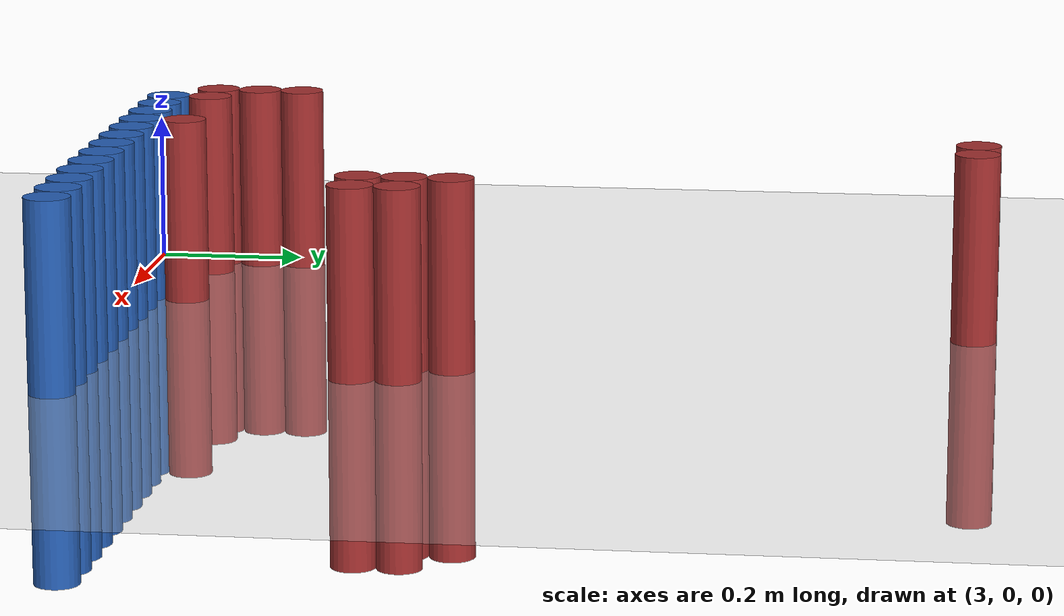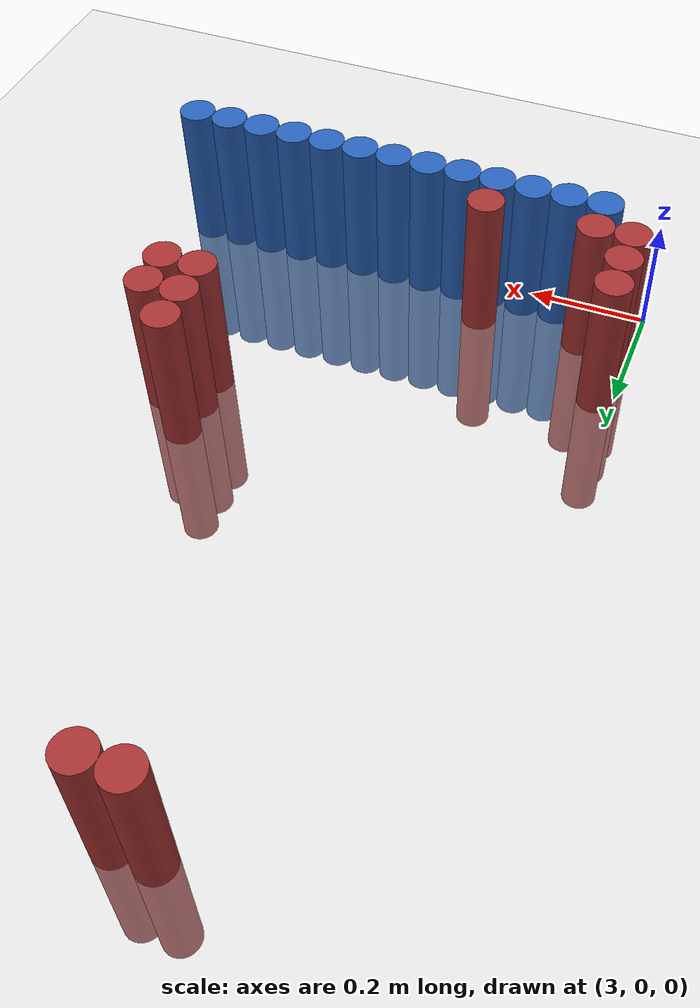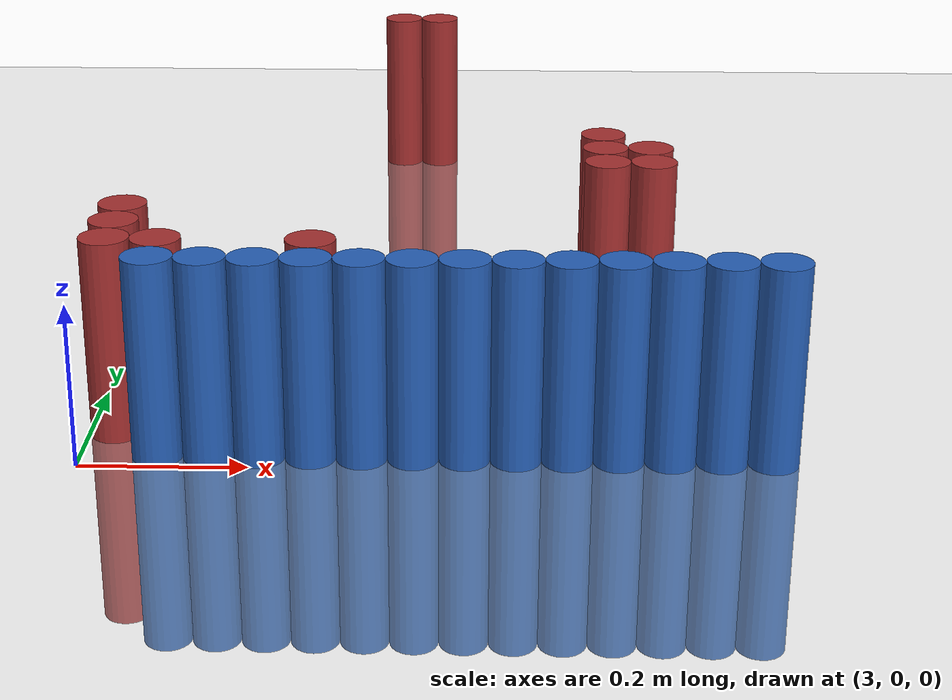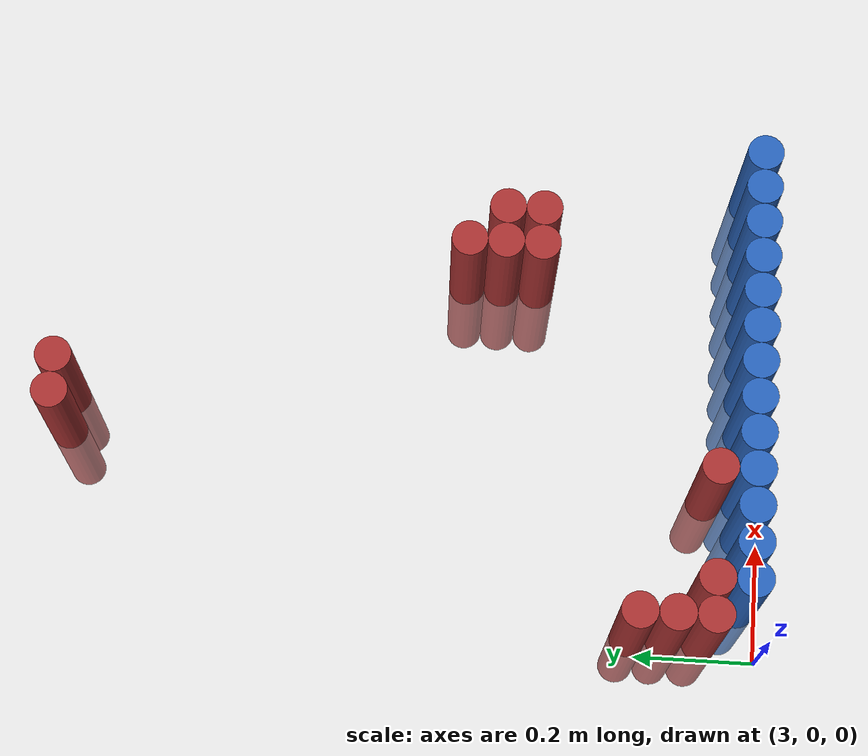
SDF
<sdf version="1.6">
 <world name="default">
  <model name="ground_plane">
   <static>1</static>
   <link name="link">
    <collision name="collision">
     <geometry><plane><normal>0 0 1</normal><size>100 100</size></plane></geometry>
     <surface><friction><ode><mu>100</mu><mu2>50</mu2></ode></friction></surface>
    </collision>
    <visual name="visual">
     <cast_shadows>0</cast_shadows>
     <geometry><plane><normal>0 0 1</normal><size>100 100</size></plane></geometry>
     <material>
      <script><uri>file://media/materials/scripts/gazebo.material</uri><name>Gazebo/Grey</name></script>
     </material>
    </visual>
   </link>
  </model>
  <model name="unit_cylinder_148">
   <static>1</static>
   <pose>3.330000 1.170000 0.000000 0.000000 0.000000 0.000000</pose>
   <link name="link">
    <inertial>
     <mass>1</mass>
     <inertia><ixx>0.145833</ixx><ixy>0</ixy><ixz>0</ixz><iyy>0.145833</iyy><iyz>0</iyz><izz>0.125</izz></inertia>
    </inertial>
    <collision name="collision">
     <geometry><cylinder><radius>0.030000</radius><length>0.5</length></cylinder></geometry>
    </collision>
    <visual name="visual">
     <geometry><cylinder><radius>0.030000</radius><length>0.5</length></cylinder></geometry>
     <material>
      <ambient>0.648000 0.192000 0.192000 1</ambient>
      <diffuse>0.648000 0.192000 0.192000 1</diffuse>
     </material>
     <material>
      <script><name>Gazebo/Grey</name><uri>file://media/materials/scripts/gazebo.material</uri></script>
     </material>
    </visual>
   </link>
  </model>
  <model name="unit_cylinder_149">
   <static>1</static>
   <pose>3.390000 1.170000 0.000000 0.000000 0.000000 0.000000</pose>
   <link name="link">
    <inertial>
     <mass>1</mass>
     <inertia><ixx>0.145833</ixx><ixy>0</ixy><ixz>0</ixz><iyy>0.145833</iyy><iyz>0</iyz><izz>0.125</izz></inertia>
    </inertial>
    <collision name="collision">
     <geometry><cylinder><radius>0.030000</radius><length>0.5</length></cylinder></geometry>
    </collision>
    <visual name="visual">
     <geometry><cylinder><radius>0.030000</radius><length>0.5</length></cylinder></geometry>
     <material>
      <ambient>0.648000 0.192000 0.192000 1</ambient>
      <diffuse>0.648000 0.192000 0.192000 1</diffuse>
     </material>
     <material>
      <script><name>Gazebo/Grey</name><uri>file://media/materials/scripts/gazebo.material</uri></script>
     </material>
    </visual>
   </link>
  </model>
  <model name="unit_cylinder_150">
   <static>1</static>
   <pose>3.630000 0.510000 0.000000 0.000000 0.000000 0.000000</pose>
   <link name="link">
    <inertial>
     <mass>1</mass>
     <inertia><ixx>0.145833</ixx><ixy>0</ixy><ixz>0</ixz><iyy>0.145833</iyy><iyz>0</iyz><izz>0.125</izz></inertia>
    </inertial>
    <collision name="collision">
     <geometry><cylinder><radius>0.030000</radius><length>0.5</length></cylinder></geometry>
    </collision>
    <visual name="visual">
     <geometry><cylinder><radius>0.030000</radius><length>0.5</length></cylinder></geometry>
     <material>
      <ambient>0.648000 0.192000 0.192000 1</ambient>
      <diffuse>0.648000 0.192000 0.192000 1</diffuse>
     </material>
     <material>
      <script><name>Gazebo/Grey</name><uri>file://media/materials/scripts/gazebo.material</uri></script>
     </material>
    </visual>
   </link>
  </model>
  <model name="unit_cylinder_153">
   <static>1</static>
   <pose>3.630000 0.450000 0.000000 0.000000 0.000000 0.000000</pose>
   <link name="link">
    <inertial>
     <mass>1</mass>
     <inertia><ixx>0.145833</ixx><ixy>0</ixy><ixz>0</ixz><iyy>0.145833</iyy><iyz>0</iyz><izz>0.125</izz></inertia>
    </inertial>
    <collision name="collision">
     <geometry><cylinder><radius>0.030000</radius><length>0.5</length></cylinder></geometry>
    </collision>
    <visual name="visual">
     <geometry><cylinder><radius>0.030000</radius><length>0.5</length></cylinder></geometry>
     <material>
      <ambient>0.648000 0.192000 0.192000 1</ambient>
      <diffuse>0.648000 0.192000 0.192000 1</diffuse>
     </material>
     <material>
      <script><name>Gazebo/Grey</name><uri>file://media/materials/scripts/gazebo.material</uri></script>
     </material>
    </visual>
   </link>
  </model>
  <model name="unit_cylinder_154">
   <static>1</static>
   <pose>3.690000 0.450000 0.000000 0.000000 0.000000 0.000000</pose>
   <link name="link">
    <inertial>
     <mass>1</mass>
     <inertia><ixx>0.145833</ixx><ixy>0</ixy><ixz>0</ixz><iyy>0.145833</iyy><iyz>0</iyz><izz>0.125</izz></inertia>
    </inertial>
    <collision name="collision">
     <geometry><cylinder><radius>0.030000</radius><length>0.5</length></cylinder></geometry>
    </collision>
    <visual name="visual">
     <geometry><cylinder><radius>0.030000</radius><length>0.5</length></cylinder></geometry>
     <material>
      <ambient>0.648000 0.192000 0.192000 1</ambient>
      <diffuse>0.648000 0.192000 0.192000 1</diffuse>
     </material>
     <material>
      <script><name>Gazebo/Grey</name><uri>file://media/materials/scripts/gazebo.material</uri></script>
     </material>
    </visual>
   </link>
  </model>
  <model name="unit_cylinder_156">
   <static>1</static>
   <pose>3.630000 0.390000 0.000000 0.000000 0.000000 0.000000</pose>
   <link name="link">
    <inertial>
     <mass>1</mass>
     <inertia><ixx>0.145833</ixx><ixy>0</ixy><ixz>0</ixz><iyy>0.145833</iyy><iyz>0</iyz><izz>0.125</izz></inertia>
    </inertial>
    <collision name="collision">
     <geometry><cylinder><radius>0.030000</radius><length>0.5</length></cylinder></geometry>
    </collision>
    <visual name="visual">
     <geometry><cylinder><radius>0.030000</radius><length>0.5</length></cylinder></geometry>
     <material>
      <ambient>0.648000 0.192000 0.192000 1</ambient>
      <diffuse>0.648000 0.192000 0.192000 1</diffuse>
     </material>
     <material>
      <script><name>Gazebo/Grey</name><uri>file://media/materials/scripts/gazebo.material</uri></script>
     </material>
    </visual>
   </link>
  </model>
  <model name="unit_cylinder_157">
   <static>1</static>
   <pose>3.690000 0.390000 0.000000 0.000000 0.000000 0.000000</pose>
   <link name="link">
    <inertial>
     <mass>1</mass>
     <inertia><ixx>0.145833</ixx><ixy>0</ixy><ixz>0</ixz><iyy>0.145833</iyy><iyz>0</iyz><izz>0.125</izz></inertia>
    </inertial>
    <collision name="collision">
     <geometry><cylinder><radius>0.030000</radius><length>0.5</length></cylinder></geometry>
    </collision>
    <visual name="visual">
     <geometry><cylinder><radius>0.030000</radius><length>0.5</length></cylinder></geometry>
     <material>
      <ambient>0.648000 0.192000 0.192000 1</ambient>
      <diffuse>0.648000 0.192000 0.192000 1</diffuse>
     </material>
     <material>
      <script><name>Gazebo/Grey</name><uri>file://media/materials/scripts/gazebo.material</uri></script>
     </material>
    </visual>
   </link>
  </model>
  <model name="unit_cylinder_160">
   <static>1</static>
   <pose>3.030000 0.210000 0.000000 0.000000 0.000000 0.000000</pose>
   <link name="link">
    <inertial>
     <mass>1</mass>
     <inertia><ixx>0.145833</ixx><ixy>0</ixy><ixz>0</ixz><iyy>0.145833</iyy><iyz>0</iyz><izz>0.125</izz></inertia>
    </inertial>
    <collision name="collision">
     <geometry><cylinder><radius>0.030000</radius><length>0.5</length></cylinder></geometry>
    </collision>
    <visual name="visual">
     <geometry><cylinder><radius>0.030000</radius><length>0.5</length></cylinder></geometry>
     <material>
      <ambient>0.648000 0.192000 0.192000 1</ambient>
      <diffuse>0.648000 0.192000 0.192000 1</diffuse>
     </material>
     <material>
      <script><name>Gazebo/Grey</name><uri>file://media/materials/scripts/gazebo.material</uri></script>
     </material>
    </visual>
   </link>
  </model>
  <model name="unit_cylinder_162">
   <static>1</static>
   <pose>3.030000 0.150000 0.000000 0.000000 0.000000 0.000000</pose>
   <link name="link">
    <inertial>
     <mass>1</mass>
     <inertia><ixx>0.145833</ixx><ixy>0</ixy><ixz>0</ixz><iyy>0.145833</iyy><iyz>0</iyz><izz>0.125</izz></inertia>
    </inertial>
    <collision name="collision">
     <geometry><cylinder><radius>0.030000</radius><length>0.5</length></cylinder></geometry>
    </collision>
    <visual name="visual">
     <geometry><cylinder><radius>0.030000</radius><length>0.5</length></cylinder></geometry>
     <material>
      <ambient>0.648000 0.192000 0.192000 1</ambient>
      <diffuse>0.648000 0.192000 0.192000 1</diffuse>
     </material>
     <material>
      <script><name>Gazebo/Grey</name><uri>file://media/materials/scripts/gazebo.material</uri></script>
     </material>
    </visual>
   </link>
  </model>
  <model name="unit_cylinder_167">
   <static>1</static>
   <pose>3.030000 0.090000 0.000000 0.000000 0.000000 0.000000</pose>
   <link name="link">
    <inertial>
     <mass>1</mass>
     <inertia><ixx>0.145833</ixx><ixy>0</ixy><ixz>0</ixz><iyy>0.145833</iyy><iyz>0</iyz><izz>0.125</izz></inertia>
    </inertial>
    <collision name="collision">
     <geometry><cylinder><radius>0.030000</radius><length>0.5</length></cylinder></geometry>
    </collision>
    <visual name="visual">
     <geometry><cylinder><radius>0.030000</radius><length>0.5</length></cylinder></geometry>
     <material>
      <ambient>0.648000 0.192000 0.192000 1</ambient>
      <diffuse>0.648000 0.192000 0.192000 1</diffuse>
     </material>
     <material>
      <script><name>Gazebo/Grey</name><uri>file://media/materials/scripts/gazebo.material</uri></script>
     </material>
    </visual>
   </link>
  </model>
  <model name="unit_cylinder_168">
   <static>1</static>
   <pose>3.090000 0.090000 0.000000 0.000000 0.000000 0.000000</pose>
   <link name="link">
    <inertial>
     <mass>1</mass>
     <inertia><ixx>0.145833</ixx><ixy>0</ixy><ixz>0</ixz><iyy>0.145833</iyy><iyz>0</iyz><izz>0.125</izz></inertia>
    </inertial>
    <collision name="collision">
     <geometry><cylinder><radius>0.030000</radius><length>0.5</length></cylinder></geometry>
    </collision>
    <visual name="visual">
     <geometry><cylinder><radius>0.030000</radius><length>0.5</length></cylinder></geometry>
     <material>
      <ambient>0.648000 0.192000 0.192000 1</ambient>
      <diffuse>0.648000 0.192000 0.192000 1</diffuse>
     </material>
     <material>
      <script><name>Gazebo/Grey</name><uri>file://media/materials/scripts/gazebo.material</uri></script>
     </material>
    </visual>
   </link>
  </model>
  <model name="unit_cylinder_169">
   <static>1</static>
   <pose>3.270000 0.090000 0.000000 0.000000 0.000000 0.000000</pose>
   <link name="link">
    <inertial>
     <mass>1</mass>
     <inertia><ixx>0.145833</ixx><ixy>0</ixy><ixz>0</ixz><iyy>0.145833</iyy><iyz>0</iyz><izz>0.125</izz></inertia>
    </inertial>
    <collision name="collision">
     <geometry><cylinder><radius>0.030000</radius><length>0.5</length></cylinder></geometry>
    </collision>
    <visual name="visual">
     <geometry><cylinder><radius>0.030000</radius><length>0.5</length></cylinder></geometry>
     <material>
      <ambient>0.648000 0.192000 0.192000 1</ambient>
      <diffuse>0.648000 0.192000 0.192000 1</diffuse>
     </material>
     <material>
      <script><name>Gazebo/Grey</name><uri>file://media/materials/scripts/gazebo.material</uri></script>
     </material>
    </visual>
   </link>
  </model>
  <model name="unit_cylinder_187">
   <static>1</static>
   <pose>3.090000 0.030000 0.000000 0.000000 0.000000 0.000000</pose>
   <link name="link">
    <inertial>
     <mass>1</mass>
     <inertia><ixx>0.145833</ixx><ixy>0</ixy><ixz>0</ixz><iyy>0.145833</iyy><iyz>0</iyz><izz>0.125</izz></inertia>
    </inertial>
    <collision name="collision">
     <geometry><cylinder><radius>0.030000</radius><length>0.5</length></cylinder></geometry>
    </collision>
    <visual name="visual">
     <geometry><cylinder><radius>0.030000</radius><length>0.5</length></cylinder></geometry>
     <material>
      <ambient>0.152000 0.379000 0.720000 1</ambient>
      <diffuse>0.152000 0.379000 0.720000 1</diffuse>
     </material>
     <material>
      <script><name>Gazebo/Grey</name><uri>file://media/materials/scripts/gazebo.material</uri></script>
     </material>
    </visual>
   </link>
  </model>
  <model name="unit_cylinder_188">
   <static>1</static>
   <pose>3.150000 0.030000 0.000000 0.000000 0.000000 0.000000</pose>
   <link name="link">
    <inertial>
     <mass>1</mass>
     <inertia><ixx>0.145833</ixx><ixy>0</ixy><ixz>0</ixz><iyy>0.145833</iyy><iyz>0</iyz><izz>0.125</izz></inertia>
    </inertial>
    <collision name="collision">
     <geometry><cylinder><radius>0.030000</radius><length>0.5</length></cylinder></geometry>
    </collision>
    <visual name="visual">
     <geometry><cylinder><radius>0.030000</radius><length>0.5</length></cylinder></geometry>
     <material>
      <ambient>0.152000 0.379000 0.720000 1</ambient>
      <diffuse>0.152000 0.379000 0.720000 1</diffuse>
     </material>
     <material>
      <script><name>Gazebo/Grey</name><uri>file://media/materials/scripts/gazebo.material</uri></script>
     </material>
    </visual>
   </link>
  </model>
  <model name="unit_cylinder_189">
   <static>1</static>
   <pose>3.210000 0.030000 0.000000 0.000000 0.000000 0.000000</pose>
   <link name="link">
    <inertial>
     <mass>1</mass>
     <inertia><ixx>0.145833</ixx><ixy>0</ixy><ixz>0</ixz><iyy>0.145833</iyy><iyz>0</iyz><izz>0.125</izz></inertia>
    </inertial>
    <collision name="collision">
     <geometry><cylinder><radius>0.030000</radius><length>0.5</length></cylinder></geometry>
    </collision>
    <visual name="visual">
     <geometry><cylinder><radius>0.030000</radius><length>0.5</length></cylinder></geometry>
     <material>
      <ambient>0.152000 0.379000 0.720000 1</ambient>
      <diffuse>0.152000 0.379000 0.720000 1</diffuse>
     </material>
     <material>
      <script><name>Gazebo/Grey</name><uri>file://media/materials/scripts/gazebo.material</uri></script>
     </material>
    </visual>
   </link>
  </model>
  <model name="unit_cylinder_190">
   <static>1</static>
   <pose>3.270000 0.030000 0.000000 0.000000 0.000000 0.000000</pose>
   <link name="link">
    <inertial>
     <mass>1</mass>
     <inertia><ixx>0.145833</ixx><ixy>0</ixy><ixz>0</ixz><iyy>0.145833</iyy><iyz>0</iyz><izz>0.125</izz></inertia>
    </inertial>
    <collision name="collision">
     <geometry><cylinder><radius>0.030000</radius><length>0.5</length></cylinder></geometry>
    </collision>
    <visual name="visual">
     <geometry><cylinder><radius>0.030000</radius><length>0.5</length></cylinder></geometry>
     <material>
      <ambient>0.152000 0.379000 0.720000 1</ambient>
      <diffuse>0.152000 0.379000 0.720000 1</diffuse>
     </material>
     <material>
      <script><name>Gazebo/Grey</name><uri>file://media/materials/scripts/gazebo.material</uri></script>
     </material>
    </visual>
   </link>
  </model>
  <model name="unit_cylinder_191">
   <static>1</static>
   <pose>3.330000 0.030000 0.000000 0.000000 0.000000 0.000000</pose>
   <link name="link">
    <inertial>
     <mass>1</mass>
     <inertia><ixx>0.145833</ixx><ixy>0</ixy><ixz>0</ixz><iyy>0.145833</iyy><iyz>0</iyz><izz>0.125</izz></inertia>
    </inertial>
    <collision name="collision">
     <geometry><cylinder><radius>0.030000</radius><length>0.5</length></cylinder></geometry>
    </collision>
    <visual name="visual">
     <geometry><cylinder><radius>0.030000</radius><length>0.5</length></cylinder></geometry>
     <material>
      <ambient>0.152000 0.379000 0.720000 1</ambient>
      <diffuse>0.152000 0.379000 0.720000 1</diffuse>
     </material>
     <material>
      <script><name>Gazebo/Grey</name><uri>file://media/materials/scripts/gazebo.material</uri></script>
     </material>
    </visual>
   </link>
  </model>
  <model name="unit_cylinder_192">
   <static>1</static>
   <pose>3.390000 0.030000 0.000000 0.000000 0.000000 0.000000</pose>
   <link name="link">
    <inertial>
     <mass>1</mass>
     <inertia><ixx>0.145833</ixx><ixy>0</ixy><ixz>0</ixz><iyy>0.145833</iyy><iyz>0</iyz><izz>0.125</izz></inertia>
    </inertial>
    <collision name="collision">
     <geometry><cylinder><radius>0.030000</radius><length>0.5</length></cylinder></geometry>
    </collision>
    <visual name="visual">
     <geometry><cylinder><radius>0.030000</radius><length>0.5</length></cylinder></geometry>
     <material>
      <ambient>0.152000 0.379000 0.720000 1</ambient>
      <diffuse>0.152000 0.379000 0.720000 1</diffuse>
     </material>
     <material>
      <script><name>Gazebo/Grey</name><uri>file://media/materials/scripts/gazebo.material</uri></script>
     </material>
    </visual>
   </link>
  </model>
  <model name="unit_cylinder_193">
   <static>1</static>
   <pose>3.450000 0.030000 0.000000 0.000000 0.000000 0.000000</pose>
   <link name="link">
    <inertial>
     <mass>1</mass>
     <inertia><ixx>0.145833</ixx><ixy>0</ixy><ixz>0</ixz><iyy>0.145833</iyy><iyz>0</iyz><izz>0.125</izz></inertia>
    </inertial>
    <collision name="collision">
     <geometry><cylinder><radius>0.030000</radius><length>0.5</length></cylinder></geometry>
    </collision>
    <visual name="visual">
     <geometry><cylinder><radius>0.030000</radius><length>0.5</length></cylinder></geometry>
     <material>
      <ambient>0.152000 0.379000 0.720000 1</ambient>
      <diffuse>0.152000 0.379000 0.720000 1</diffuse>
     </material>
     <material>
      <script><name>Gazebo/Grey</name><uri>file://media/materials/scripts/gazebo.material</uri></script>
     </material>
    </visual>
   </link>
  </model>
  <model name="unit_cylinder_194">
   <static>1</static>
   <pose>3.510000 0.030000 0.000000 0.000000 0.000000 0.000000</pose>
   <link name="link">
    <inertial>
     <mass>1</mass>
     <inertia><ixx>0.145833</ixx><ixy>0</ixy><ixz>0</ixz><iyy>0.145833</iyy><iyz>0</iyz><izz>0.125</izz></inertia>
    </inertial>
    <collision name="collision">
     <geometry><cylinder><radius>0.030000</radius><length>0.5</length></cylinder></geometry>
    </collision>
    <visual name="visual">
     <geometry><cylinder><radius>0.030000</radius><length>0.5</length></cylinder></geometry>
     <material>
      <ambient>0.152000 0.379000 0.720000 1</ambient>
      <diffuse>0.152000 0.379000 0.720000 1</diffuse>
     </material>
     <material>
      <script><name>Gazebo/Grey</name><uri>file://media/materials/scripts/gazebo.material</uri></script>
     </material>
    </visual>
   </link>
  </model>
  <model name="unit_cylinder_195">
   <static>1</static>
   <pose>3.570000 0.030000 0.000000 0.000000 0.000000 0.000000</pose>
   <link name="link">
    <inertial>
     <mass>1</mass>
     <inertia><ixx>0.145833</ixx><ixy>0</ixy><ixz>0</ixz><iyy>0.145833</iyy><iyz>0</iyz><izz>0.125</izz></inertia>
    </inertial>
    <collision name="collision">
     <geometry><cylinder><radius>0.030000</radius><length>0.5</length></cylinder></geometry>
    </collision>
    <visual name="visual">
     <geometry><cylinder><radius>0.030000</radius><length>0.5</length></cylinder></geometry>
     <material>
      <ambient>0.152000 0.379000 0.720000 1</ambient>
      <diffuse>0.152000 0.379000 0.720000 1</diffuse>
     </material>
     <material>
      <script><name>Gazebo/Grey</name><uri>file://media/materials/scripts/gazebo.material</uri></script>
     </material>
    </visual>
   </link>
  </model>
  <model name="unit_cylinder_196">
   <static>1</static>
   <pose>3.630000 0.030000 0.000000 0.000000 0.000000 0.000000</pose>
   <link name="link">
    <inertial>
     <mass>1</mass>
     <inertia><ixx>0.145833</ixx><ixy>0</ixy><ixz>0</ixz><iyy>0.145833</iyy><iyz>0</iyz><izz>0.125</izz></inertia>
    </inertial>
    <collision name="collision">
     <geometry><cylinder><radius>0.030000</radius><length>0.5</length></cylinder></geometry>
    </collision>
    <visual name="visual">
     <geometry><cylinder><radius>0.030000</radius><length>0.5</length></cylinder></geometry>
     <material>
      <ambient>0.152000 0.379000 0.720000 1</ambient>
      <diffuse>0.152000 0.379000 0.720000 1</diffuse>
     </material>
     <material>
      <script><name>Gazebo/Grey</name><uri>file://media/materials/scripts/gazebo.material</uri></script>
     </material>
    </visual>
   </link>
  </model>
  <model name="unit_cylinder_197">
   <static>1</static>
   <pose>3.690000 0.030000 0.000000 0.000000 0.000000 0.000000</pose>
   <link name="link">
    <inertial>
     <mass>1</mass>
     <inertia><ixx>0.145833</ixx><ixy>0</ixy><ixz>0</ixz><iyy>0.145833</iyy><iyz>0</iyz><izz>0.125</izz></inertia>
    </inertial>
    <collision name="collision">
     <geometry><cylinder><radius>0.030000</radius><length>0.5</length></cylinder></geometry>
    </collision>
    <visual name="visual">
     <geometry><cylinder><radius>0.030000</radius><length>0.5</length></cylinder></geometry>
     <material>
      <ambient>0.152000 0.379000 0.720000 1</ambient>
      <diffuse>0.152000 0.379000 0.720000 1</diffuse>
     </material>
     <material>
      <script><name>Gazebo/Grey</name><uri>file://media/materials/scripts/gazebo.material</uri></script>
     </material>
    </visual>
   </link>
  </model>
  <model name="unit_cylinder_198">
   <static>1</static>
   <pose>3.750000 0.030000 0.000000 0.000000 0.000000 0.000000</pose>
   <link name="link">
    <inertial>
     <mass>1</mass>
     <inertia><ixx>0.145833</ixx><ixy>0</ixy><ixz>0</ixz><iyy>0.145833</iyy><iyz>0</iyz><izz>0.125</izz></inertia>
    </inertial>
    <collision name="collision">
     <geometry><cylinder><radius>0.030000</radius><length>0.5</length></cylinder></geometry>
    </collision>
    <visual name="visual">
     <geometry><cylinder><radius>0.030000</radius><length>0.5</length></cylinder></geometry>
     <material>
      <ambient>0.152000 0.379000 0.720000 1</ambient>
      <diffuse>0.152000 0.379000 0.720000 1</diffuse>
     </material>
     <material>
      <script><name>Gazebo/Grey</name><uri>file://media/materials/scripts/gazebo.material</uri></script>
     </material>
    </visual>
   </link>
  </model>
  <model name="unit_cylinder_199">
   <static>1</static>
   <pose>3.810000 0.030000 0.000000 0.000000 0.000000 0.000000</pose>
   <link name="link">
    <inertial>
     <mass>1</mass>
     <inertia><ixx>0.145833</ixx><ixy>0</ixy><ixz>0</ixz><iyy>0.145833</iyy><iyz>0</iyz><izz>0.125</izz></inertia>
    </inertial>
    <collision name="collision">
     <geometry><cylinder><radius>0.030000</radius><length>0.5</length></cylinder></geometry>
    </collision>
    <visual name="visual">
     <geometry><cylinder><radius>0.030000</radius><length>0.5</length></cylinder></geometry>
     <material>
      <ambient>0.152000 0.379000 0.720000 1</ambient>
      <diffuse>0.152000 0.379000 0.720000 1</diffuse>
     </material>
     <material>
      <script><name>Gazebo/Grey</name><uri>file://media/materials/scripts/gazebo.material</uri></script>
     </material>
    </visual>
   </link>
  </model>
 </world>
</sdf>
